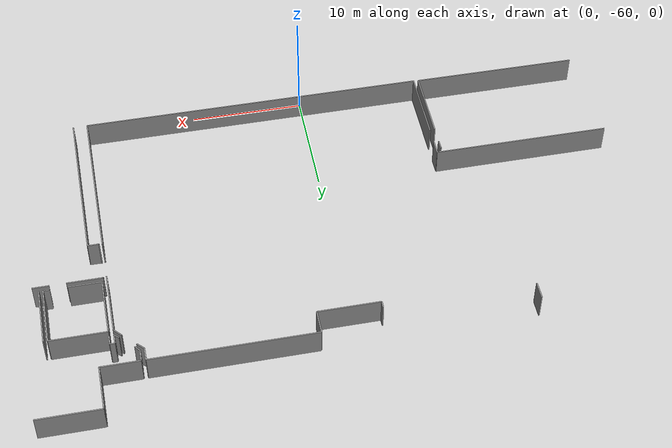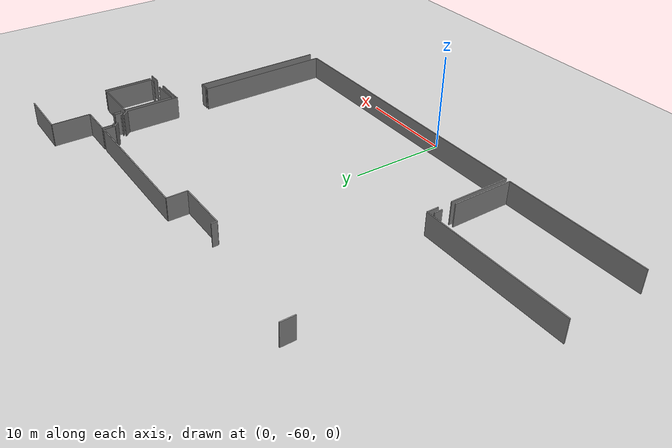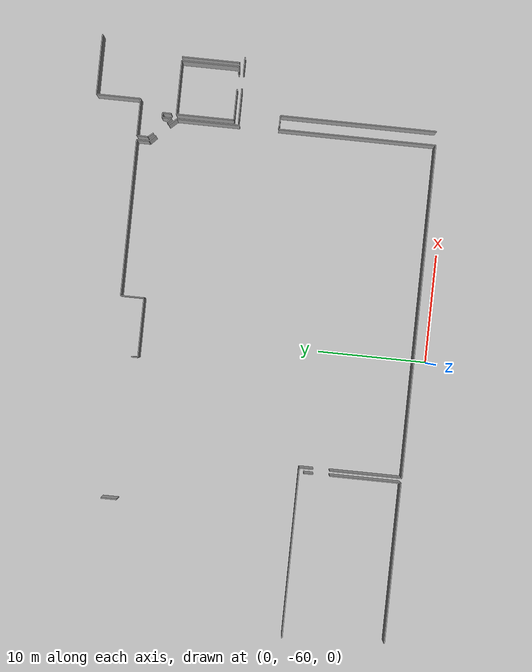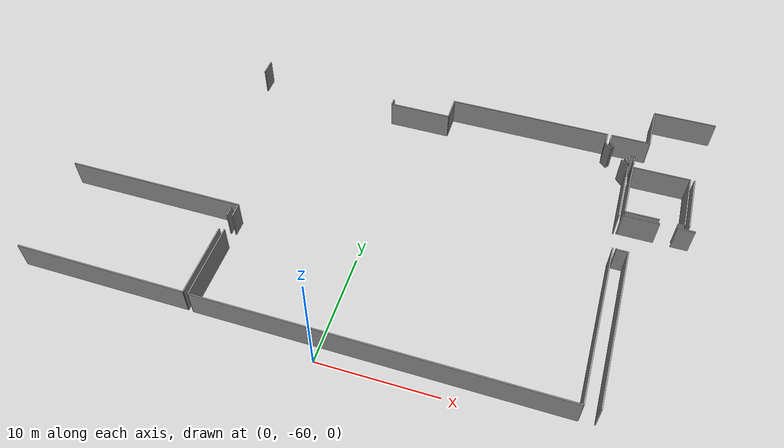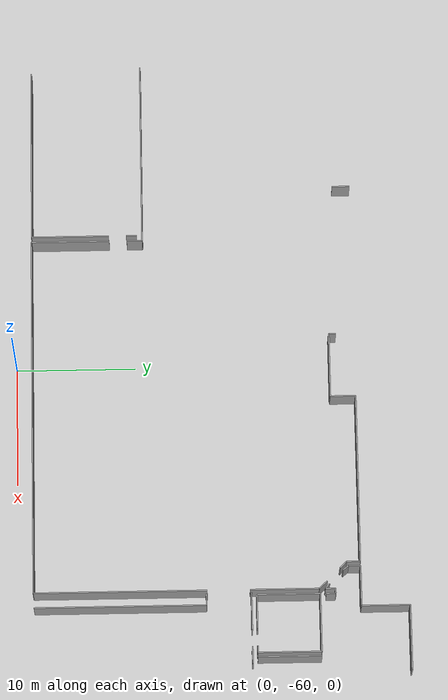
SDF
<sdf version="1.6">
 <world name="default">
  <model name="ground_plane">
   <static>1</static>
   <link name="link">
    <collision name="collision">
     <geometry><plane><normal>0 0 1</normal><size>100 100</size></plane></geometry>
     <surface><friction><ode><mu>100</mu><mu2>50</mu2></ode></friction></surface>
    </collision>
    <visual name="visual">
     <cast_shadows>0</cast_shadows>
     <geometry><plane><normal>0 0 1</normal><size>100 100</size></plane></geometry>
     <material>
      <script><uri>file://media/materials/scripts/gazebo.material</uri><name>Gazebo/Grey</name></script>
     </material>
    </visual>
   </link>
  </model>
  <model name="0510035518_A_40_1_101">
   <static>1</static>
   <link name="Wall_190">
    <collision name="Wall_190_Collision">
     <geometry><box><size>1.4905049222 0.1 2.5</size></box></geometry>
     <pose>0.745252461099 0 1.25 0 0 0</pose>
    </collision>
    <visual name="Wall_190_Visual">
     <pose>0.745252461099 0 1.25 0 0 0</pose>
     <geometry><box><size>1.4905049222 0.1 2.5</size></box></geometry>
     <material>
      <script><uri>file://media/materials/scripts/gazebo.material</uri><name>Gazebo/Grey</name></script>
      <ambient>1 1 1 1</ambient>
     </material>
    </visual>
    <pose>101.557827882 -100.133629724 0 0 0 -1.57079632679</pose>
   </link>
   <link name="Wall_192">
    <collision name="Wall_192_Collision">
     <geometry><box><size>0.596760876469 0.1 2.5</size></box></geometry>
     <pose>0.298380438234 0 1.25 0 0 0</pose>
    </collision>
    <visual name="Wall_192_Visual">
     <pose>0.298380438234 0 1.25 0 0 0</pose>
     <geometry><box><size>0.596760876469 0.1 2.5</size></box></geometry>
     <material>
      <script><uri>file://media/materials/scripts/gazebo.material</uri><name>Gazebo/Grey</name></script>
      <ambient>1 1 1 1</ambient>
     </material>
    </visual>
    <pose>114.655319149 -101.624134646 0 0 0 -1.57079632679</pose>
   </link>
   <link name="Wall_193">
    <collision name="Wall_193_Collision">
     <geometry><box><size>5.45874880915 0.1 2.5</size></box></geometry>
     <pose>2.72937440457 0 1.25 0 0 0</pose>
    </collision>
    <visual name="Wall_193_Visual">
     <pose>2.72937440457 0 1.25 0 0 0</pose>
     <geometry><box><size>5.45874880915 0.1 2.5</size></box></geometry>
     <material>
      <script><uri>file://media/materials/scripts/gazebo.material</uri><name>Gazebo/Grey</name></script>
      <ambient>1 1 1 1</ambient>
     </material>
    </visual>
    <pose>114.655319149 -102.220895522 0 0 0 0.0</pose>
   </link>
   <link name="Wall_194">
    <collision name="Wall_194_Collision">
     <geometry><box><size>2.13070816132 0.1 2.5</size></box></geometry>
     <pose>1.06535408066 0 1.25 0 0 0</pose>
    </collision>
    <visual name="Wall_194_Visual">
     <pose>1.06535408066 0 1.25 0 0 0</pose>
     <geometry><box><size>2.13070816132 0.1 2.5</size></box></geometry>
     <material>
      <script><uri>file://media/materials/scripts/gazebo.material</uri><name>Gazebo/Grey</name></script>
      <ambient>1 1 1 1</ambient>
     </material>
    </visual>
    <pose>120.114067958 -102.220895522 0 0 0 1.57079632679</pose>
   </link>
   <link name="Wall_195">
    <collision name="Wall_195_Collision">
     <geometry><box><size>14.2973642426 0.1 2.5</size></box></geometry>
     <pose>7.14868212131 0 1.25 0 0 0</pose>
    </collision>
    <visual name="Wall_195_Visual">
     <pose>7.14868212131 0 1.25 0 0 0</pose>
     <geometry><box><size>14.2973642426 0.1 2.5</size></box></geometry>
     <material>
      <script><uri>file://media/materials/scripts/gazebo.material</uri><name>Gazebo/Grey</name></script>
      <ambient>1 1 1 1</ambient>
     </material>
    </visual>
    <pose>120.114067958 -100.090187361 0 0 0 0.0</pose>
   </link>
   <link name="Wall_196">
    <collision name="Wall_196_Collision">
     <geometry><box><size>1.14703080343 0.1 2.5</size></box></geometry>
     <pose>0.573515401715 0 1.25 0 0 0</pose>
    </collision>
    <visual name="Wall_196_Visual">
     <pose>0.573515401715 0 1.25 0 0 0</pose>
     <geometry><box><size>1.14703080343 0.1 2.5</size></box></geometry>
     <material>
      <script><uri>file://media/materials/scripts/gazebo.material</uri><name>Gazebo/Grey</name></script>
      <ambient>1 1 1 1</ambient>
     </material>
    </visual>
    <pose>134.411432201 -100.090187361 0 0 0 -1.57079632679</pose>
   </link>
   <link name="Wall_197">
    <collision name="Wall_197_Collision">
     <geometry><box><size>0.781094582162 0.1 2.5</size></box></geometry>
     <pose>0.390547291081 0 1.25 0 0 0</pose>
    </collision>
    <visual name="Wall_197_Visual">
     <pose>0.390547291081 0 1.25 0 0 0</pose>
     <geometry><box><size>0.781094582162 0.1 2.5</size></box></geometry>
     <material>
      <script><uri>file://media/materials/scripts/gazebo.material</uri><name>Gazebo/Grey</name></script>
      <ambient>1 1 1 1</ambient>
     </material>
    </visual>
    <pose>134.411432201 -101.237218164 0 0 0 -0.778038590661</pose>
   </link>
   <link name="Wall_198">
    <collision name="Wall_198_Collision">
     <geometry><box><size>0.926943826988 0.1 2.5</size></box></geometry>
     <pose>0.463471913494 0 1.25 0 0 0</pose>
    </collision>
    <visual name="Wall_198_Visual">
     <pose>0.463471913494 0 1.25 0 0 0</pose>
     <geometry><box><size>0.926943826988 0.1 2.5</size></box></geometry>
     <material>
      <script><uri>file://media/materials/scripts/gazebo.material</uri><name>Gazebo/Grey</name></script>
      <ambient>1 1 1 1</ambient>
     </material>
    </visual>
    <pose>136.052334074 -102.876595745 0 0 0 -0.837553421905</pose>
   </link>
   <link name="Wall_199">
    <collision name="Wall_199_Collision">
     <geometry><box><size>5.73972689743 0.1 2.5</size></box></geometry>
     <pose>2.86986344871 0 1.25 0 0 0</pose>
    </collision>
    <visual name="Wall_199_Visual">
     <pose>2.86986344871 0 1.25 0 0 0</pose>
     <geometry><box><size>5.73972689743 0.1 2.5</size></box></geometry>
     <material>
      <script><uri>file://media/materials/scripts/gazebo.material</uri><name>Gazebo/Grey</name></script>
      <ambient>1 1 1 1</ambient>
     </material>
    </visual>
    <pose>136.672721499 -103.565322325 0 0 0 -1.57079632679</pose>
   </link>
   <link name="Wall_200">
    <collision name="Wall_200_Collision">
     <geometry><box><size>14.4259129883 0.1 2.5</size></box></geometry>
     <pose>7.21295649413 0 1.25 0 0 0</pose>
    </collision>
    <visual name="Wall_200_Visual">
     <pose>7.21295649413 0 1.25 0 0 0</pose>
     <geometry><box><size>14.4259129883 0.1 2.5</size></box></geometry>
     <material>
      <script><uri>file://media/materials/scripts/gazebo.material</uri><name>Gazebo/Grey</name></script>
      <ambient>1 1 1 1</ambient>
     </material>
    </visual>
    <pose>136.672721499 -112.880787552 0 0 0 -1.57079632679</pose>
   </link>
   <link name="Wall_201">
    <collision name="Wall_201_Collision">
     <geometry><box><size>30.5559860273 0.1 2.5</size></box></geometry>
     <pose>15.2779930137 0 1.25 0 0 0</pose>
    </collision>
    <visual name="Wall_201_Visual">
     <pose>15.2779930137 0 1.25 0 0 0</pose>
     <geometry><box><size>30.5559860273 0.1 2.5</size></box></geometry>
     <material>
      <script><uri>file://media/materials/scripts/gazebo.material</uri><name>Gazebo/Grey</name></script>
      <ambient>1 1 1 1</ambient>
     </material>
    </visual>
    <pose>136.672721499 -127.30670054 0 0 0 3.14159265359</pose>
   </link>
   <link name="Wall_202">
    <collision name="Wall_202_Collision">
     <geometry><box><size>6.6243251826 0.1 2.5</size></box></geometry>
     <pose>3.3121625913 0 1.25 0 0 0</pose>
    </collision>
    <visual name="Wall_202_Visual">
     <pose>3.3121625913 0 1.25 0 0 0</pose>
     <geometry><box><size>6.6243251826 0.1 2.5</size></box></geometry>
     <material>
      <script><uri>file://media/materials/scripts/gazebo.material</uri><name>Gazebo/Grey</name></script>
      <ambient>1 1 1 1</ambient>
     </material>
    </visual>
    <pose>106.116735472 -127.30670054 0 0 0 1.57079632679</pose>
   </link>
   <link name="Wall_203">
    <collision name="Wall_203_Collision">
     <geometry><box><size>1.29056843442 0.1 2.5</size></box></geometry>
     <pose>0.645284217212 0 1.25 0 0 0</pose>
    </collision>
    <visual name="Wall_203_Visual">
     <pose>0.645284217212 0 1.25 0 0 0</pose>
     <geometry><box><size>1.29056843442 0.1 2.5</size></box></geometry>
     <material>
      <script><uri>file://media/materials/scripts/gazebo.material</uri><name>Gazebo/Grey</name></script>
      <ambient>1 1 1 1</ambient>
     </material>
    </visual>
    <pose>106.116735472 -119.188059701 0 0 0 1.57079632679</pose>
   </link>
   <link name="Wall_204">
    <collision name="Wall_204_Collision">
     <geometry><box><size>15.6349317244 0.1 2.5</size></box></geometry>
     <pose>7.81746586218 0 1.25 0 0 0</pose>
    </collision>
    <visual name="Wall_204_Visual">
     <pose>7.81746586218 0 1.25 0 0 0</pose>
     <geometry><box><size>15.6349317244 0.1 2.5</size></box></geometry>
     <material>
      <script><uri>file://media/materials/scripts/gazebo.material</uri><name>Gazebo/Grey</name></script>
      <ambient>1 1 1 1</ambient>
     </material>
    </visual>
    <pose>106.116735472 -117.897491267 0 0 0 3.14159265359</pose>
   </link>
   <link name="Wall_209">
    <collision name="Wall_209_Collision">
     <geometry><box><size>0.890187361067 0.1 2.5</size></box></geometry>
     <pose>0.445093680534 0 1.25 0 0 0</pose>
    </collision>
    <visual name="Wall_209_Visual">
     <pose>0.445093680534 0 1.25 0 0 0</pose>
     <geometry><box><size>0.890187361067 0.1 2.5</size></box></geometry>
     <material>
      <script><uri>file://media/materials/scripts/gazebo.material</uri><name>Gazebo/Grey</name></script>
      <ambient>1 1 1 1</ambient>
     </material>
    </visual>
    <pose>105.665290568 -118.343347094 0 0 0 -1.57079632679</pose>
   </link>
   <link name="Wall_210">
    <collision name="Wall_210_Collision">
     <geometry><box><size>6.54074309305 0.1 2.5</size></box></geometry>
     <pose>3.27037154652 0 1.25 0 0 0</pose>
    </collision>
    <visual name="Wall_210_Visual">
     <pose>3.27037154652 0 1.25 0 0 0</pose>
     <geometry><box><size>6.54074309305 0.1 2.5</size></box></geometry>
     <material>
      <script><uri>file://media/materials/scripts/gazebo.material</uri><name>Gazebo/Grey</name></script>
      <ambient>1 1 1 1</ambient>
     </material>
    </visual>
    <pose>105.665290568 -120.732931089 0 0 0 -1.57079632679</pose>
   </link>
   <link name="Wall_211">
    <collision name="Wall_211_Collision">
     <geometry><box><size>14.7246995913 0.1 2.5</size></box></geometry>
     <pose>7.36234979566 0 1.25 0 0 0</pose>
    </collision>
    <visual name="Wall_211_Visual">
     <pose>7.36234979566 0 1.25 0 0 0</pose>
     <geometry><box><size>14.7246995913 0.1 2.5</size></box></geometry>
     <material>
      <script><uri>file://media/materials/scripts/gazebo.material</uri><name>Gazebo/Grey</name></script>
      <ambient>1 1 1 1</ambient>
     </material>
    </visual>
    <pose>105.665290568 -127.273674182 0 0 0 3.13974655493</pose>
   </link>
   <link name="Wall_212">
    <collision name="Wall_212_Collision">
     <geometry><box><size>14.3380120673 0.1 2.5</size></box></geometry>
     <pose>7.16900603366 0 1.25 0 0 0</pose>
    </collision>
    <visual name="Wall_212_Visual">
     <pose>7.16900603366 0 1.25 0 0 0</pose>
     <geometry><box><size>14.3380120673 0.1 2.5</size></box></geometry>
     <material>
      <script><uri>file://media/materials/scripts/gazebo.material</uri><name>Gazebo/Grey</name></script>
      <ambient>1 1 1 1</ambient>
     </material>
    </visual>
    <pose>137.92696094 -127.268593204 0 0 0 1.57079632679</pose>
   </link>
   <link name="Wall_213">
    <collision name="Wall_213_Collision">
     <geometry><box><size>0.974277548428 0.1 2.5</size></box></geometry>
     <pose>0.487138774214 0 1.25 0 0 0</pose>
    </collision>
    <visual name="Wall_213_Visual">
     <pose>0.487138774214 0 1.25 0 0 0</pose>
     <geometry><box><size>0.974277548428 0.1 2.5</size></box></geometry>
     <material>
      <script><uri>file://media/materials/scripts/gazebo.material</uri><name>Gazebo/Grey</name></script>
      <ambient>1 1 1 1</ambient>
     </material>
    </visual>
    <pose>137.92696094 -112.930581137 0 0 0 3.14159265359</pose>
   </link>
   <link name="Wall_214">
    <collision name="Wall_214_Collision">
     <geometry><box><size>0.0830739917434 0.1 2.5</size></box></geometry>
     <pose>0.0415369958717 0 1.25 0 0 0</pose>
    </collision>
    <visual name="Wall_214_Visual">
     <pose>0.0415369958717 0 1.25 0 0 0</pose>
     <geometry><box><size>0.0830739917434 0.1 2.5</size></box></geometry>
     <material>
      <script><uri>file://media/materials/scripts/gazebo.material</uri><name>Gazebo/Grey</name></script>
      <ambient>1 1 1 1</ambient>
     </material>
    </visual>
    <pose>136.952683392 -112.930581137 0 0 0 1.57079632679</pose>
   </link>
   <link name="Wall_215">
    <collision name="Wall_215_Collision">
     <geometry><box><size>0.0759606224198 0.1 2.5</size></box></geometry>
     <pose>0.0379803112099 0 1.25 0 0 0</pose>
    </collision>
    <visual name="Wall_215_Visual">
     <pose>0.0379803112099 0 1.25 0 0 0</pose>
     <geometry><box><size>0.0759606224198 0.1 2.5</size></box></geometry>
     <material>
      <script><uri>file://media/materials/scripts/gazebo.material</uri><name>Gazebo/Grey</name></script>
      <ambient>1 1 1 1</ambient>
     </material>
    </visual>
    <pose>136.952683392 -109.255255637 0 0 0 1.57079632679</pose>
   </link>
   <link name="Wall_216">
    <collision name="Wall_216_Collision">
     <geometry><box><size>3.07678628136 0.1 2.5</size></box></geometry>
     <pose>1.53839314068 0 1.25 0 0 0</pose>
    </collision>
    <visual name="Wall_216_Visual">
     <pose>1.53839314068 0 1.25 0 0 0</pose>
     <geometry><box><size>3.07678628136 0.1 2.5</size></box></geometry>
     <material>
      <script><uri>file://media/materials/scripts/gazebo.material</uri><name>Gazebo/Grey</name></script>
      <ambient>1 1 1 1</ambient>
     </material>
    </visual>
    <pose>136.952683392 -109.179295014 0 0 0 0.0</pose>
   </link>
   <link name="Wall_217">
    <collision name="Wall_217_Collision">
     <geometry><box><size>1.4386789457 0.1 2.5</size></box></geometry>
     <pose>0.719339472849 0 1.25 0 0 0</pose>
    </collision>
    <visual name="Wall_217_Visual">
     <pose>0.719339472849 0 1.25 0 0 0</pose>
     <geometry><box><size>1.4386789457 0.1 2.5</size></box></geometry>
     <material>
      <script><uri>file://media/materials/scripts/gazebo.material</uri><name>Gazebo/Grey</name></script>
      <ambient>1 1 1 1</ambient>
     </material>
    </visual>
    <pose>141.453667831 -109.179295014 0 0 0 0.0</pose>
   </link>
   <link name="Wall_265">
    <collision name="Wall_265_Collision">
     <geometry><box><size>5.27634169578 0.1 2.5</size></box></geometry>
     <pose>2.63817084789 0 1.25 0 0 0</pose>
    </collision>
    <visual name="Wall_265_Visual">
     <pose>2.63817084789 0 1.25 0 0 0</pose>
     <geometry><box><size>5.27634169578 0.1 2.5</size></box></geometry>
     <material>
      <script><uri>file://media/materials/scripts/gazebo.material</uri><name>Gazebo/Grey</name></script>
      <ambient>1 1 1 1</ambient>
     </material>
    </visual>
    <pose>137.098507463 -108.74207685 0 0 0 1.57079632679</pose>
   </link>
   <link name="Wall_266">
    <collision name="Wall_266_Collision">
     <geometry><box><size>4.903651953 0.1 2.5</size></box></geometry>
     <pose>2.4518259765 0 1.25 0 0 0</pose>
    </collision>
    <visual name="Wall_266_Visual">
     <pose>2.4518259765 0 1.25 0 0 0</pose>
     <geometry><box><size>4.903651953 0.1 2.5</size></box></geometry>
     <material>
      <script><uri>file://media/materials/scripts/gazebo.material</uri><name>Gazebo/Grey</name></script>
      <ambient>1 1 1 1</ambient>
     </material>
    </visual>
    <pose>137.098507463 -103.465735154 0 0 0 0.0</pose>
   </link>
   <link name="Wall_267">
    <collision name="Wall_267_Collision">
     <geometry><box><size>5.27608764687 0.1 2.5</size></box></geometry>
     <pose>2.63804382344 0 1.25 0 0 0</pose>
    </collision>
    <visual name="Wall_267_Visual">
     <pose>2.63804382344 0 1.25 0 0 0</pose>
     <geometry><box><size>5.27608764687 0.1 2.5</size></box></geometry>
     <material>
      <script><uri>file://media/materials/scripts/gazebo.material</uri><name>Gazebo/Grey</name></script>
      <ambient>1 1 1 1</ambient>
     </material>
    </visual>
    <pose>142.002159416 -103.465735154 0 0 0 -1.57079632679</pose>
   </link>
   <link name="Wall_268">
    <collision name="Wall_268_Collision">
     <geometry><box><size>0.56805335027 0.1 2.5</size></box></geometry>
     <pose>0.284026675135 0 1.25 0 0 0</pose>
    </collision>
    <visual name="Wall_268_Visual">
     <pose>0.284026675135 0 1.25 0 0 0</pose>
     <geometry><box><size>0.56805335027 0.1 2.5</size></box></geometry>
     <material>
      <script><uri>file://media/materials/scripts/gazebo.material</uri><name>Gazebo/Grey</name></script>
      <ambient>1 1 1 1</ambient>
     </material>
    </visual>
    <pose>142.002159416 -108.741822801 0 0 0 3.14159265359</pose>
   </link>
   <link name="Wall_269">
    <collision name="Wall_269_Collision">
     <geometry><box><size>2.84509369188 0.1 2.5</size></box></geometry>
     <pose>1.42254684594 0 1.25 0 0 0</pose>
    </collision>
    <visual name="Wall_269_Visual">
     <pose>1.42254684594 0 1.25 0 0 0</pose>
     <geometry><box><size>2.84509369188 0.1 2.5</size></box></geometry>
     <material>
      <script><uri>file://media/materials/scripts/gazebo.material</uri><name>Gazebo/Grey</name></script>
      <ambient>1 1 1 1</ambient>
     </material>
    </visual>
    <pose>139.943601143 -108.741822801 0 0 0 -3.1415033599</pose>
   </link>
   <link name="Wall_270">
    <collision name="Wall_270_Collision">
     <geometry><box><size>5.29946014608 0.1 2.5</size></box></geometry>
     <pose>2.64973007304 0 1.25 0 0 0</pose>
    </collision>
    <visual name="Wall_270_Visual">
     <pose>2.64973007304 0 1.25 0 0 0</pose>
     <geometry><box><size>5.29946014608 0.1 2.5</size></box></geometry>
     <material>
      <script><uri>file://media/materials/scripts/gazebo.material</uri><name>Gazebo/Grey</name></script>
      <ambient>1 1 1 1</ambient>
     </material>
    </visual>
    <pose>142.362654811 -108.747411877 0 0 0 1.57079632679</pose>
   </link>
   <link name="Wall_350">
    <collision name="Wall_350_Collision">
     <geometry><box><size>3.3785963798 0.1 2.5</size></box></geometry>
     <pose>1.6892981899 0 1.25 0 0 0</pose>
    </collision>
    <visual name="Wall_350_Visual">
     <pose>1.6892981899 0 1.25 0 0 0</pose>
     <geometry><box><size>3.3785963798 0.1 2.5</size></box></geometry>
     <material>
      <script><uri>file://media/materials/scripts/gazebo.material</uri><name>Gazebo/Grey</name></script>
      <ambient>1 1 1 1</ambient>
     </material>
    </visual>
    <pose>134.802667513 -100.075706574 0 0 0 0.0</pose>
   </link>
   <link name="Wall_351">
    <collision name="Wall_351_Collision">
     <geometry><box><size>4.0515719276 0.1 2.5</size></box></geometry>
     <pose>2.0257859638 0 1.25 0 0 0</pose>
    </collision>
    <visual name="Wall_351_Visual">
     <pose>2.0257859638 0 1.25 0 0 0</pose>
     <geometry><box><size>4.0515719276 0.1 2.5</size></box></geometry>
     <material>
      <script><uri>file://media/materials/scripts/gazebo.material</uri><name>Gazebo/Grey</name></script>
      <ambient>1 1 1 1</ambient>
     </material>
    </visual>
    <pose>138.181263893 -100.075706574 0 0 0 1.57079632679</pose>
   </link>
   <link name="Wall_352">
    <collision name="Wall_352_Collision">
     <geometry><box><size>5.47475389012 0.1 2.5</size></box></geometry>
     <pose>2.73737694506 0 1.25 0 0 0</pose>
    </collision>
    <visual name="Wall_352_Visual">
     <pose>2.73737694506 0 1.25 0 0 0</pose>
     <geometry><box><size>5.47475389012 0.1 2.5</size></box></geometry>
     <material>
      <script><uri>file://media/materials/scripts/gazebo.material</uri><name>Gazebo/Grey</name></script>
      <ambient>1 1 1 1</ambient>
     </material>
    </visual>
    <pose>138.181263893 -96.0241346459 0 0 0 0.0</pose>
   </link>
   <link name="Wall_358">
    <collision name="Wall_358_Collision">
     <geometry><box><size>0.792886630676 0.1 2.5</size></box></geometry>
     <pose>0.396443315338 0 1.25 0 0 0</pose>
    </collision>
    <visual name="Wall_358_Visual">
     <pose>0.396443315338 0 1.25 0 0 0</pose>
     <geometry><box><size>0.792886630676 0.1 2.5</size></box></geometry>
     <material>
      <script><uri>file://media/materials/scripts/gazebo.material</uri><name>Gazebo/Grey</name></script>
      <ambient>1 1 1 1</ambient>
     </material>
    </visual>
    <pose>137.104096539 -102.987361067 0 0 0 1.57079632679</pose>
   </link>
   <link name="Wall_359">
    <collision name="Wall_359_Collision">
     <geometry><box><size>0.422737376945 0.1 2.5</size></box></geometry>
     <pose>0.211368688473 0 1.25 0 0 0</pose>
    </collision>
    <visual name="Wall_359_Visual">
     <pose>0.211368688473 0 1.25 0 0 0</pose>
     <geometry><box><size>0.422737376945 0.1 2.5</size></box></geometry>
     <material>
      <script><uri>file://media/materials/scripts/gazebo.material</uri><name>Gazebo/Grey</name></script>
      <ambient>1 1 1 1</ambient>
     </material>
    </visual>
    <pose>137.104096539 -102.194474436 0 0 0 3.14159265359</pose>
   </link>
   <link name="Wall_360">
    <collision name="Wall_360_Collision">
     <geometry><box><size>0.845220704986 0.1 2.5</size></box></geometry>
     <pose>0.422610352493 0 1.25 0 0 0</pose>
    </collision>
    <visual name="Wall_360_Visual">
     <pose>0.422610352493 0 1.25 0 0 0</pose>
     <geometry><box><size>0.845220704986 0.1 2.5</size></box></geometry>
     <material>
      <script><uri>file://media/materials/scripts/gazebo.material</uri><name>Gazebo/Grey</name></script>
      <ambient>1 1 1 1</ambient>
     </material>
    </visual>
    <pose>136.681359162 -102.194474436 0 0 0 -1.57079632679</pose>
   </link>
   <link name="Wall_361">
    <collision name="Wall_361_Collision">
     <geometry><box><size>0.531538612684 0.1 2.5</size></box></geometry>
     <pose>0.265769306342 0 1.25 0 0 0</pose>
    </collision>
    <visual name="Wall_361_Visual">
     <pose>0.265769306342 0 1.25 0 0 0</pose>
     <geometry><box><size>0.531538612684 0.1 2.5</size></box></geometry>
     <material>
      <script><uri>file://media/materials/scripts/gazebo.material</uri><name>Gazebo/Grey</name></script>
      <ambient>1 1 1 1</ambient>
     </material>
    </visual>
    <pose>136.681359162 -103.039695141 0 0 0 2.41943547772</pose>
   </link>
   <link name="Wall_362">
    <collision name="Wall_362_Collision">
     <geometry><box><size>0.590443595303 0.1 2.5</size></box></geometry>
     <pose>0.295221797652 0 1.25 0 0 0</pose>
    </collision>
    <visual name="Wall_362_Visual">
     <pose>0.295221797652 0 1.25 0 0 0</pose>
     <geometry><box><size>0.590443595303 0.1 2.5</size></box></geometry>
     <material>
      <script><uri>file://media/materials/scripts/gazebo.material</uri><name>Gazebo/Grey</name></script>
      <ambient>1 1 1 1</ambient>
     </material>
    </visual>
    <pose>135.148174023 -101.551476659 0 0 0 2.2357264152</pose>
   </link>
   <link name="Wall_363">
    <collision name="Wall_363_Collision">
     <geometry><box><size>1.01128939479 0.1 2.5</size></box></geometry>
     <pose>0.505644697396 0 1.25 0 0 0</pose>
    </collision>
    <visual name="Wall_363_Visual">
     <pose>0.505644697396 0 1.25 0 0 0</pose>
     <geometry><box><size>1.01128939479 0.1 2.5</size></box></geometry>
     <material>
      <script><uri>file://media/materials/scripts/gazebo.material</uri><name>Gazebo/Grey</name></script>
      <ambient>1 1 1 1</ambient>
     </material>
    </visual>
    <pose>134.783867895 -101.086821213 0 0 0 1.55220550405</pose>
   </link>
   <pose>-116.8 68.630612893 0 0 0 0</pose>
  </model>
 </world>
</sdf>
